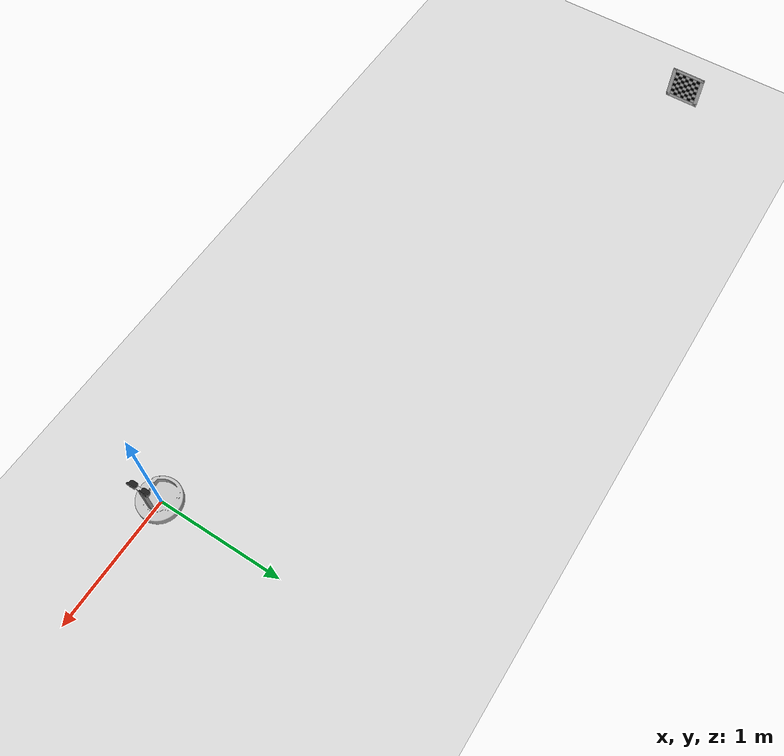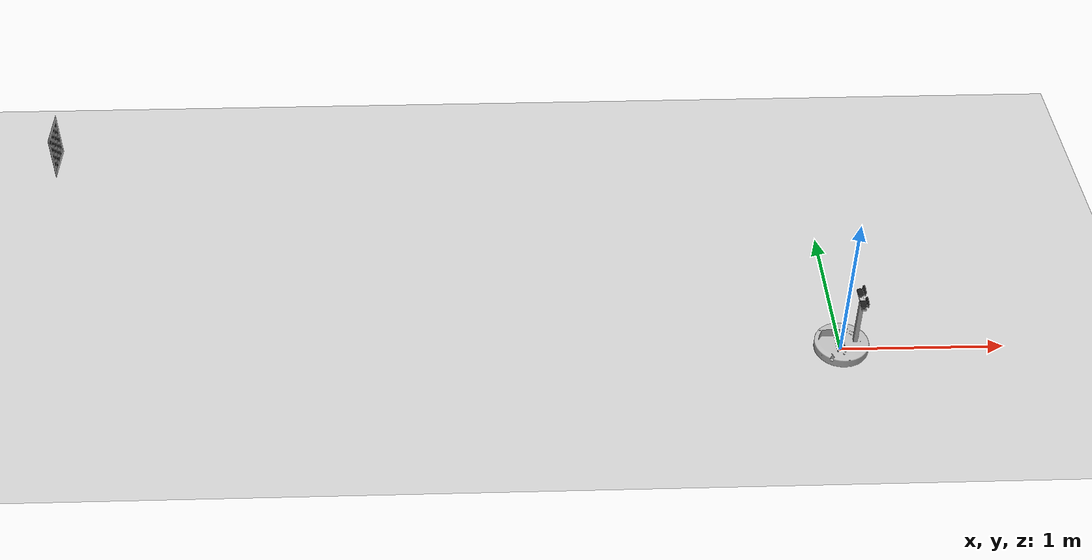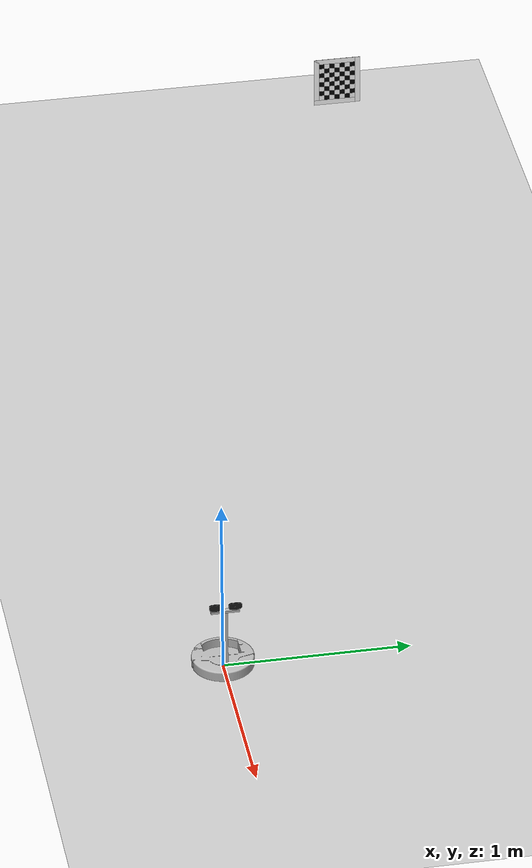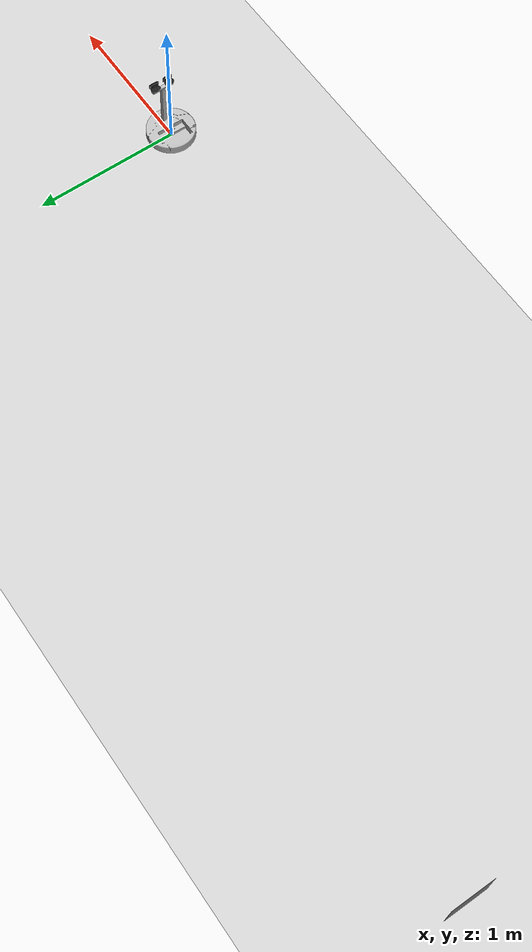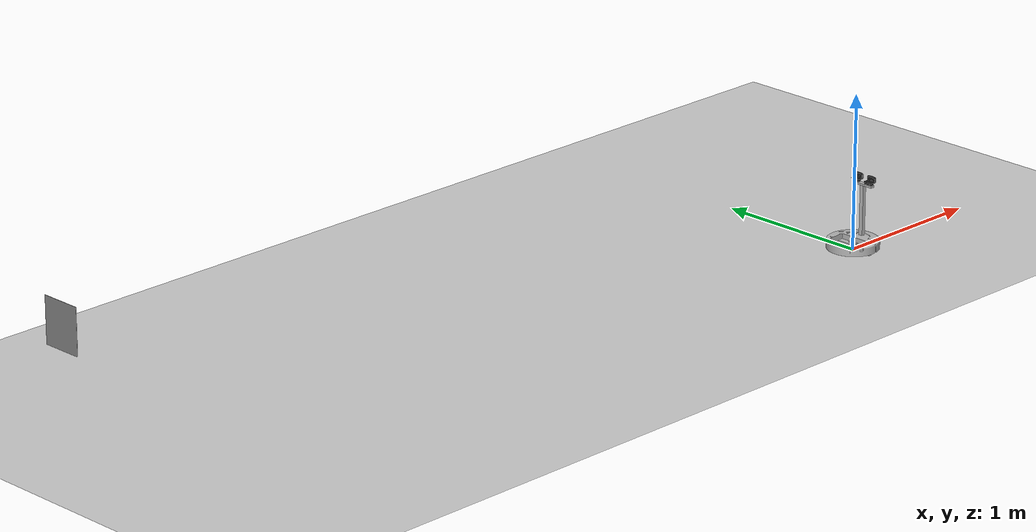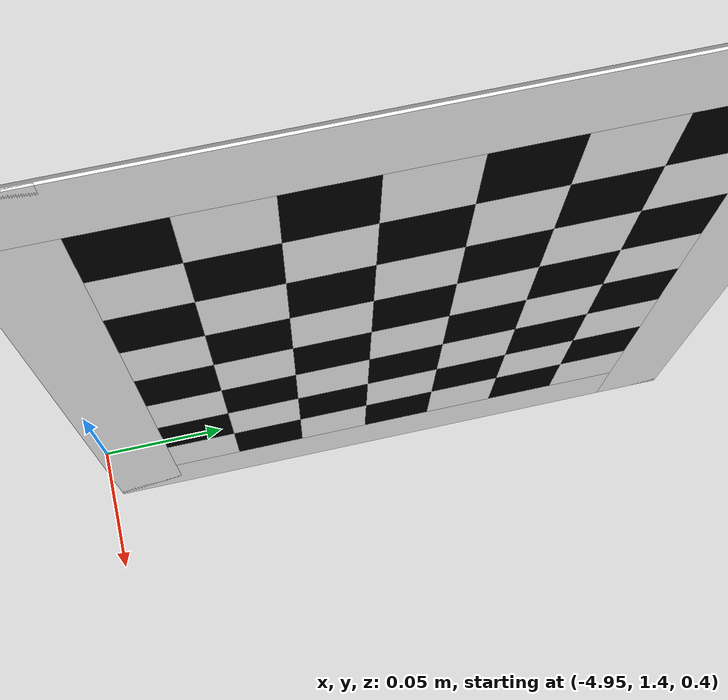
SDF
<sdf version="1.6">
 <world name="default">
  <plugin filename="gz-sim-physics-system" name="gz::sim::systems::Physics"/>
  <plugin filename="gz-sim-user-commands-system" name="gz::sim::systems::UserCommands"/>
  <plugin filename="gz-sim-scene-broadcaster-system" name="gz::sim::systems::SceneBroadcaster"/>
  <plugin filename="gz-sim-contact-system" name="gz::sim::systems::Contact"/>
  <plugin filename="gz-sim-sensors-system" name="gz::sim::systems::Sensors"/>
  <plugin filename="gz-sim-altimeter-system" name="gz::sim::systems::Altimeter"/>
  <plugin filename="gz-sim-magnetometer-system" name="gz::sim::systems::Magnetometer"/>
  <plugin filename="gz-sim-forcetorque-system" name="gz::sim::systems::ForceTorque"/>
  <plugin filename="gz-sim-logical-camera-system" name="gz::sim::systems::LogicalCamera"/>
  <plugin filename="gz-sim-robotraconteur-server-plugin" name="RobotRaconteur::GzSim::ServerPlugin">
   <server-tcp-port>11346</server-tcp-port>
  </plugin>
  <scene><ambient>0.6 0.6 0.6 1.0</ambient><shadows>false</shadows></scene>
  <physics name="default_physics" default="true" type="dart">
   <dart><ode><solver><type>default</type></solver></ode></dart>
   <max_step_size>0.001</max_step_size>
   <real_time_factor>1.0</real_time_factor>
  </physics>
  <light type="directional" name="sun">
   <pose>0 0 10 0 0 0</pose>
   <diffuse>0.8 0.8 0.8 1</diffuse>
   <specular>0.2 0.2 0.2 1</specular>
   <attenuation>
    <range>1000</range>
    <constant>0.9</constant>
    <linear>0.01</linear>
    <quadratic>0.001</quadratic>
   </attenuation>
   <direction>-0.5 0.1 -0.9</direction>
  </light>
  <model name="ground_plane">
   <static>true</static>
   <link name="link">
    <collision name="collision">
     <geometry><plane><normal>0 0 1</normal><size>100 100</size></plane></geometry>
     <surface>
      <friction><ode><mu>0</mu><mu2>0</mu2><fdir1>0 0 0</fdir1><slip1>0</slip1><slip2>0</slip2></ode></friction>
     </surface>
    </collision>
    <visual name="visual">
     <geometry><plane><normal>0 0 1</normal><size>100 100</size></plane></geometry>
     <material>
      <ambient>0.8 0.8 0.8 1</ambient>
      <diffuse>0.8 0.8 0.8 1</diffuse>
      <specular>0.8 0.8 0.8 1</specular>
     </material>
    </visual>
   </link>
  </model>
  <include><uri>model://landmark</uri><pose>-4.95 1.53 0.48 0 -1.57 0</pose></include>
  <include><uri>model://rr_create</uri></include>
  <gravity>0.0 0.0 -9.81</gravity>
 </world>
</sdf>

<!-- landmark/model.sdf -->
<!-- |    This document was autogenerated by xacro from model.sdx.xacro                | -->
<!-- |    EDITING THIS FILE BY HAND IS NOT RECOMMENDED                                 | -->
<sdf version="1.5">
  <model name="landmark">
    <static>true</static>
    <link name="base_link">
      <!-- Back of the landmark not to mess with small Z offset -->
      <visual name="back">
        <pose>0 0 0.0015 0 0 0</pose>
        <geometry>
          <box>
            <size>0.3 0.27 0.001</size>
          </box>
        </geometry>
        <material>
          <ambient>0.5 0.5 0.5 1</ambient>
          <specular>0.5 0.5 0.5 1</specular>
          <diffuse>0.5 0.5 0.5 1</diffuse>
        </material>
      </visual>
      <inertial>
        <mass>0.1</mass>
      </inertial>
      <!-- Borders -->
      <visual name="border0">
        <pose>0.135 0 0.0005 0 0 0</pose>
        <geometry>
          <box>
            <size>0.03 0.27 0.001</size>
          </box>
        </geometry>
        <material>
          <ambient>1 1 1 1</ambient>
          <specular>1 1 1 1</specular>
          <diffuse>1 1 1 1</diffuse>
        </material>
      </visual>
      <visual name="border1">
        <pose>-0.135 0 0.0005 0 0 0</pose>
        <geometry>
          <box>
            <size>0.03 0.27 0.001</size>
          </box>
        </geometry>
        <material>
          <ambient>1 1 1 1</ambient>
          <specular>1 1 1 1</specular>
          <diffuse>1 1 1 1</diffuse>
        </material>
      </visual>
      <visual name="border2">
        <pose>0 0.12 0.0005 0 0 0</pose>
        <geometry>
          <box>
            <size>0.3 0.03 0.001</size>
          </box>
        </geometry>
        <material>
          <ambient>1 1 1 1</ambient>
          <specular>1 1 1 1</specular>
          <diffuse>1 1 1 1</diffuse>
        </material>
      </visual>
      <visual name="border3">
        <pose>0 -0.12 0.0005 0 0 0</pose>
        <geometry>
          <box>
            <size>0.3 0.03 0.001</size>
          </box>
        </geometry>
        <material>
          <ambient>1 1 1 1</ambient>
          <specular>1 1 1 1</specular>
          <diffuse>1 1 1 1</diffuse>
        </material>
      </visual>
      <visual name="76">
        <pose>0.105 0.09 0.0005 0 0 0</pose>
        <geometry>
          <box>
            <size>0.03 0.03 0.001</size>
          </box>
        </geometry>
        <material>
          <ambient>0 0 0 1</ambient>
          <specular>0 0 0 1</specular>
          <diffuse>0 0 0 1</diffuse>
        </material>
      </visual>
      <visual name="75">
        <pose>0.105 0.06 0.0005 0 0 0</pose>
        <geometry>
          <box>
            <size>0.03 0.03 0.001</size>
          </box>
        </geometry>
        <material>
          <ambient>1 1 1 1</ambient>
          <specular>1 1 1 1</specular>
          <diffuse>1 1 1 1</diffuse>
        </material>
      </visual>
      <visual name="74">
        <pose>0.105 0.03 0.0005 0 0 0</pose>
        <geometry>
          <box>
            <size>0.03 0.03 0.001</size>
          </box>
        </geometry>
        <material>
          <ambient>0 0 0 1</ambient>
          <specular>0 0 0 1</specular>
          <diffuse>0 0 0 1</diffuse>
        </material>
      </visual>
      <visual name="73">
        <pose>0.105 0.0 0.0005 0 0 0</pose>
        <geometry>
          <box>
            <size>0.03 0.03 0.001</size>
          </box>
        </geometry>
        <material>
          <ambient>1 1 1 1</ambient>
          <specular>1 1 1 1</specular>
          <diffuse>1 1 1 1</diffuse>
        </material>
      </visual>
      <visual name="72">
        <pose>0.105 -0.03 0.0005 0 0 0</pose>
        <geometry>
          <box>
            <size>0.03 0.03 0.001</size>
          </box>
        </geometry>
        <material>
          <ambient>0 0 0 1</ambient>
          <specular>0 0 0 1</specular>
          <diffuse>0 0 0 1</diffuse>
        </material>
      </visual>
      <visual name="71">
        <pose>0.105 -0.06 0.0005 0 0 0</pose>
        <geometry>
          <box>
            <size>0.03 0.03 0.001</size>
          </box>
        </geometry>
        <material>
          <ambient>1 1 1 1</ambient>
          <specular>1 1 1 1</specular>
          <diffuse>1 1 1 1</diffuse>
        </material>
      </visual>
      <visual name="70">
        <pose>0.105 -0.09 0.0005 0 0 0</pose>
        <geometry>
          <box>
            <size>0.03 0.03 0.001</size>
          </box>
        </geometry>
        <material>
          <ambient>0 0 0 1</ambient>
          <specular>0 0 0 1</specular>
          <diffuse>0 0 0 1</diffuse>
        </material>
      </visual>
      <visual name="66">
        <pose>0.075 0.09 0.0005 0 0 0</pose>
        <geometry>
          <box>
            <size>0.03 0.03 0.001</size>
          </box>
        </geometry>
        <material>
          <ambient>1 1 1 1</ambient>
          <specular>1 1 1 1</specular>
          <diffuse>1 1 1 1</diffuse>
        </material>
      </visual>
      <visual name="65">
        <pose>0.075 0.06 0.0005 0 0 0</pose>
        <geometry>
          <box>
            <size>0.03 0.03 0.001</size>
          </box>
        </geometry>
        <material>
          <ambient>0 0 0 1</ambient>
          <specular>0 0 0 1</specular>
          <diffuse>0 0 0 1</diffuse>
        </material>
      </visual>
      <visual name="64">
        <pose>0.075 0.03 0.0005 0 0 0</pose>
        <geometry>
          <box>
            <size>0.03 0.03 0.001</size>
          </box>
        </geometry>
        <material>
          <ambient>1 1 1 1</ambient>
          <specular>1 1 1 1</specular>
          <diffuse>1 1 1 1</diffuse>
        </material>
      </visual>
      <visual name="63">
        <pose>0.075 0.0 0.0005 0 0 0</pose>
        <geometry>
          <box>
            <size>0.03 0.03 0.001</size>
          </box>
        </geometry>
        <material>
          <ambient>0 0 0 1</ambient>
          <specular>0 0 0 1</specular>
          <diffuse>0 0 0 1</diffuse>
        </material>
      </visual>
      <visual name="62">
        <pose>0.075 -0.03 0.0005 0 0 0</pose>
        <geometry>
          <box>
            <size>0.03 0.03 0.001</size>
          </box>
        </geometry>
        <material>
          <ambient>1 1 1 1</ambient>
          <specular>1 1 1 1</specular>
          <diffuse>1 1 1 1</diffuse>
        </material>
      </visual>
      <visual name="61">
        <pose>0.075 -0.06 0.0005 0 0 0</pose>
        <geometry>
          <box>
            <size>0.03 0.03 0.001</size>
          </box>
        </geometry>
        <material>
          <ambient>0 0 0 1</ambient>
          <specular>0 0 0 1</specular>
          <diffuse>0 0 0 1</diffuse>
        </material>
      </visual>
      <visual name="60">
        <pose>0.075 -0.09 0.0005 0 0 0</pose>
        <geometry>
          <box>
            <size>0.03 0.03 0.001</size>
          </box>
        </geometry>
        <material>
          <ambient>1 1 1 1</ambient>
          <specular>1 1 1 1</specular>
          <diffuse>1 1 1 1</diffuse>
        </material>
      </visual>
      <visual name="56">
        <pose>0.045 0.09 0.0005 0 0 0</pose>
        <geometry>
          <box>
            <size>0.03 0.03 0.001</size>
          </box>
        </geometry>
        <material>
          <ambient>0 0 0 1</ambient>
          <specular>0 0 0 1</specular>
          <diffuse>0 0 0 1</diffuse>
        </material>
      </visual>
      <visual name="55">
        <pose>0.045 0.06 0.0005 0 0 0</pose>
        <geometry>
          <box>
            <size>0.03 0.03 0.001</size>
          </box>
        </geometry>
        <material>
          <ambient>1 1 1 1</ambient>
          <specular>1 1 1 1</specular>
          <diffuse>1 1 1 1</diffuse>
        </material>
      </visual>
      <visual name="54">
        <pose>0.045 0.03 0.0005 0 0 0</pose>
        <geometry>
          <box>
            <size>0.03 0.03 0.001</size>
          </box>
        </geometry>
        <material>
          <ambient>0 0 0 1</ambient>
          <specular>0 0 0 1</specular>
          <diffuse>0 0 0 1</diffuse>
        </material>
      </visual>
      <visual name="53">
        <pose>0.045 0.0 0.0005 0 0 0</pose>
        <geometry>
          <box>
            <size>0.03 0.03 0.001</size>
          </box>
        </geometry>
        <material>
          <ambient>1 1 1 1</ambient>
          <specular>1 1 1 1</specular>
          <diffuse>1 1 1 1</diffuse>
        </material>
      </visual>
      <visual name="52">
        <pose>0.045 -0.03 0.0005 0 0 0</pose>
        <geometry>
          <box>
            <size>0.03 0.03 0.001</size>
          </box>
        </geometry>
        <material>
          <ambient>0 0 0 1</ambient>
          <specular>0 0 0 1</specular>
          <diffuse>0 0 0 1</diffuse>
        </material>
      </visual>
      <visual name="51">
        <pose>0.045 -0.06 0.0005 0 0 0</pose>
        <geometry>
          <box>
            <size>0.03 0.03 0.001</size>
          </box>
        </geometry>
        <material>
          <ambient>1 1 1 1</ambient>
          <specular>1 1 1 1</specular>
          <diffuse>1 1 1 1</diffuse>
        </material>
      </visual>
      <visual name="50">
        <pose>0.045 -0.09 0.0005 0 0 0</pose>
        <geometry>
          <box>
            <size>0.03 0.03 0.001</size>
          </box>
        </geometry>
        <material>
          <ambient>0 0 0 1</ambient>
          <specular>0 0 0 1</specular>
          <diffuse>0 0 0 1</diffuse>
        </material>
      </visual>
      <visual name="46">
        <pose>0.015 0.09 0.0005 0 0 0</pose>
        <geometry>
          <box>
            <size>0.03 0.03 0.001</size>
          </box>
        </geometry>
        <material>
          <ambient>1 1 1 1</ambient>
          <specular>1 1 1 1</specular>
          <diffuse>1 1 1 1</diffuse>
        </material>
      </visual>
      <visual name="45">
        <pose>0.015 0.06 0.0005 0 0 0</pose>
        <geometry>
          <box>
            <size>0.03 0.03 0.001</size>
          </box>
        </geometry>
        <material>
          <ambient>0 0 0 1</ambient>
          <specular>0 0 0 1</specular>
          <diffuse>0 0 0 1</diffuse>
        </material>
      </visual>
      <visual name="44">
        <pose>0.015 0.03 0.0005 0 0 0</pose>
        <geometry>
          <box>
            <size>0.03 0.03 0.001</size>
          </box>
        </geometry>
        <material>
          <ambient>1 1 1 1</ambient>
          <specular>1 1 1 1</specular>
          <diffuse>1 1 1 1</diffuse>
        </material>
      </visual>
      <visual name="43">
        <pose>0.015 0.0 0.0005 0 0 0</pose>
        <geometry>
          <box>
            <size>0.03 0.03 0.001</size>
          </box>
        </geometry>
        <material>
          <ambient>0 0 0 1</ambient>
          <specular>0 0 0 1</specular>
          <diffuse>0 0 0 1</diffuse>
        </material>
      </visual>
      <visual name="42">
        <pose>0.015 -0.03 0.0005 0 0 0</pose>
        <geometry>
          <box>
            <size>0.03 0.03 0.001</size>
          </box>
        </geometry>
        <material>
          <ambient>1 1 1 1</ambient>
          <specular>1 1 1 1</specular>
          <diffuse>1 1 1 1</diffuse>
        </material>
      </visual>
      <visual name="41">
        <pose>0.015 -0.06 0.0005 0 0 0</pose>
        <geometry>
          <box>
            <size>0.03 0.03 0.001</size>
          </box>
        </geometry>
        <material>
          <ambient>0 0 0 1</ambient>
          <specular>0 0 0 1</specular>
          <diffuse>0 0 0 1</diffuse>
        </material>
      </visual>
      <visual name="40">
        <pose>0.015 -0.09 0.0005 0 0 0</pose>
        <geometry>
          <box>
            <size>0.03 0.03 0.001</size>
          </box>
        </geometry>
        <material>
          <ambient>1 1 1 1</ambient>
          <specular>1 1 1 1</specular>
          <diffuse>1 1 1 1</diffuse>
        </material>
      </visual>
      <visual name="36">
        <pose>-0.015 0.09 0.0005 0 0 0</pose>
        <geometry>
          <box>
            <size>0.03 0.03 0.001</size>
          </box>
        </geometry>
        <material>
          <ambient>0 0 0 1</ambient>
          <specular>0 0 0 1</specular>
          <diffuse>0 0 0 1</diffuse>
        </material>
      </visual>
      <visual name="35">
        <pose>-0.015 0.06 0.0005 0 0 0</pose>
        <geometry>
          <box>
            <size>0.03 0.03 0.001</size>
          </box>
        </geometry>
        <material>
          <ambient>1 1 1 1</ambient>
          <specular>1 1 1 1</specular>
          <diffuse>1 1 1 1</diffuse>
        </material>
      </visual>
      <visual name="34">
        <pose>-0.015 0.03 0.0005 0 0 0</pose>
        <geometry>
          <box>
            <size>0.03 0.03 0.001</size>
          </box>
        </geometry>
        <material>
          <ambient>0 0 0 1</ambient>
          <specular>0 0 0 1</specular>
          <diffuse>0 0 0 1</diffuse>
        </material>
      </visual>
      <visual name="33">
        <pose>-0.015 0.0 0.0005 0 0 0</pose>
        <geometry>
          <box>
            <size>0.03 0.03 0.001</size>
          </box>
        </geometry>
        <material>
          <ambient>1 1 1 1</ambient>
          <specular>1 1 1 1</specular>
          <diffuse>1 1 1 1</diffuse>
        </material>
      </visual>
      <visual name="32">
        <pose>-0.015 -0.03 0.0005 0 0 0</pose>
        <geometry>
          <box>
            <size>0.03 0.03 0.001</size>
          </box>
        </geometry>
        <material>
          <ambient>0 0 0 1</ambient>
          <specular>0 0 0 1</specular>
          <diffuse>0 0 0 1</diffuse>
        </material>
      </visual>
      <visual name="31">
        <pose>-0.015 -0.06 0.0005 0 0 0</pose>
        <geometry>
          <box>
            <size>0.03 0.03 0.001</size>
          </box>
        </geometry>
        <material>
          <ambient>1 1 1 1</ambient>
          <specular>1 1 1 1</specular>
          <diffuse>1 1 1 1</diffuse>
        </material>
      </visual>
      <visual name="30">
        <pose>-0.015 -0.09 0.0005 0 0 0</pose>
        <geometry>
          <box>
            <size>0.03 0.03 0.001</size>
          </box>
        </geometry>
        <material>
          <ambient>0 0 0 1</ambient>
          <specular>0 0 0 1</specular>
          <diffuse>0 0 0 1</diffuse>
        </material>
      </visual>
      <visual name="26">
        <pose>-0.045 0.09 0.0005 0 0 0</pose>
        <geometry>
          <box>
            <size>0.03 0.03 0.001</size>
          </box>
        </geometry>
        <material>
          <ambient>1 1 1 1</ambient>
          <specular>1 1 1 1</specular>
          <diffuse>1 1 1 1</diffuse>
        </material>
      </visual>
      <visual name="25">
        <pose>-0.045 0.06 0.0005 0 0 0</pose>
        <geometry>
          <box>
            <size>0.03 0.03 0.001</size>
          </box>
        </geometry>
        <material>
          <ambient>0 0 0 1</ambient>
          <specular>0 0 0 1</specular>
          <diffuse>0 0 0 1</diffuse>
        </material>
      </visual>
      <visual name="24">
        <pose>-0.045 0.03 0.0005 0 0 0</pose>
        <geometry>
          <box>
            <size>0.03 0.03 0.001</size>
          </box>
        </geometry>
        <material>
          <ambient>1 1 1 1</ambient>
          <specular>1 1 1 1</specular>
          <diffuse>1 1 1 1</diffuse>
        </material>
      </visual>
      <visual name="23">
        <pose>-0.045 0.0 0.0005 0 0 0</pose>
        <geometry>
          <box>
            <size>0.03 0.03 0.001</size>
          </box>
        </geometry>
        <material>
          <ambient>0 0 0 1</ambient>
          <specular>0 0 0 1</specular>
          <diffuse>0 0 0 1</diffuse>
        </material>
      </visual>
      <visual name="22">
        <pose>-0.045 -0.03 0.0005 0 0 0</pose>
        <geometry>
          <box>
            <size>0.03 0.03 0.001</size>
          </box>
        </geometry>
        <material>
          <ambient>1 1 1 1</ambient>
          <specular>1 1 1 1</specular>
          <diffuse>1 1 1 1</diffuse>
        </material>
      </visual>
      <visual name="21">
        <pose>-0.045 -0.06 0.0005 0 0 0</pose>
        <geometry>
          <box>
            <size>0.03 0.03 0.001</size>
          </box>
        </geometry>
        <material>
          <ambient>0 0 0 1</ambient>
          <specular>0 0 0 1</specular>
          <diffuse>0 0 0 1</diffuse>
        </material>
      </visual>
      <visual name="20">
        <pose>-0.045 -0.09 0.0005 0 0 0</pose>
        <geometry>
          <box>
            <size>0.03 0.03 0.001</size>
          </box>
        </geometry>
        <material>
          <ambient>1 1 1 1</ambient>
          <specular>1 1 1 1</specular>
          <diffuse>1 1 1 1</diffuse>
        </material>
      </visual>
      <visual name="16">
        <pose>-0.075 0.09 0.0005 0 0 0</pose>
        <geometry>
          <box>
            <size>0.03 0.03 0.001</size>
          </box>
        </geometry>
        <material>
          <ambient>0 0 0 1</ambient>
          <specular>0 0 0 1</specular>
          <diffuse>0 0 0 1</diffuse>
        </material>
      </visual>
      <visual name="15">
        <pose>-0.075 0.06 0.0005 0 0 0</pose>
        <geometry>
          <box>
            <size>0.03 0.03 0.001</size>
          </box>
        </geometry>
        <material>
          <ambient>1 1 1 1</ambient>
          <specular>1 1 1 1</specular>
          <diffuse>1 1 1 1</diffuse>
        </material>
      </visual>
      <visual name="14">
        <pose>-0.075 0.03 0.0005 0 0 0</pose>
        <geometry>
          <box>
            <size>0.03 0.03 0.001</size>
          </box>
        </geometry>
        <material>
          <ambient>0 0 0 1</ambient>
          <specular>0 0 0 1</specular>
          <diffuse>0 0 0 1</diffuse>
        </material>
      </visual>
      <visual name="13">
        <pose>-0.075 0.0 0.0005 0 0 0</pose>
        <geometry>
          <box>
            <size>0.03 0.03 0.001</size>
          </box>
        </geometry>
        <material>
          <ambient>1 1 1 1</ambient>
          <specular>1 1 1 1</specular>
          <diffuse>1 1 1 1</diffuse>
        </material>
      </visual>
      <visual name="12">
        <pose>-0.075 -0.03 0.0005 0 0 0</pose>
        <geometry>
          <box>
            <size>0.03 0.03 0.001</size>
          </box>
        </geometry>
        <material>
          <ambient>0 0 0 1</ambient>
          <specular>0 0 0 1</specular>
          <diffuse>0 0 0 1</diffuse>
        </material>
      </visual>
      <visual name="11">
        <pose>-0.075 -0.06 0.0005 0 0 0</pose>
        <geometry>
          <box>
            <size>0.03 0.03 0.001</size>
          </box>
        </geometry>
        <material>
          <ambient>1 1 1 1</ambient>
          <specular>1 1 1 1</specular>
          <diffuse>1 1 1 1</diffuse>
        </material>
      </visual>
      <visual name="10">
        <pose>-0.075 -0.09 0.0005 0 0 0</pose>
        <geometry>
          <box>
            <size>0.03 0.03 0.001</size>
          </box>
        </geometry>
        <material>
          <ambient>0 0 0 1</ambient>
          <specular>0 0 0 1</specular>
          <diffuse>0 0 0 1</diffuse>
        </material>
      </visual>
      <visual name="06">
        <pose>-0.105 0.09 0.0005 0 0 0</pose>
        <geometry>
          <box>
            <size>0.03 0.03 0.001</size>
          </box>
        </geometry>
        <material>
          <ambient>1 1 1 1</ambient>
          <specular>1 1 1 1</specular>
          <diffuse>1 1 1 1</diffuse>
        </material>
      </visual>
      <visual name="05">
        <pose>-0.105 0.06 0.0005 0 0 0</pose>
        <geometry>
          <box>
            <size>0.03 0.03 0.001</size>
          </box>
        </geometry>
        <material>
          <ambient>0 0 0 1</ambient>
          <specular>0 0 0 1</specular>
          <diffuse>0 0 0 1</diffuse>
        </material>
      </visual>
      <visual name="04">
        <pose>-0.105 0.03 0.0005 0 0 0</pose>
        <geometry>
          <box>
            <size>0.03 0.03 0.001</size>
          </box>
        </geometry>
        <material>
          <ambient>1 1 1 1</ambient>
          <specular>1 1 1 1</specular>
          <diffuse>1 1 1 1</diffuse>
        </material>
      </visual>
      <visual name="03">
        <pose>-0.105 0.0 0.0005 0 0 0</pose>
        <geometry>
          <box>
            <size>0.03 0.03 0.001</size>
          </box>
        </geometry>
        <material>
          <ambient>0 0 0 1</ambient>
          <specular>0 0 0 1</specular>
          <diffuse>0 0 0 1</diffuse>
        </material>
      </visual>
      <visual name="02">
        <pose>-0.105 -0.03 0.0005 0 0 0</pose>
        <geometry>
          <box>
            <size>0.03 0.03 0.001</size>
          </box>
        </geometry>
        <material>
          <ambient>1 1 1 1</ambient>
          <specular>1 1 1 1</specular>
          <diffuse>1 1 1 1</diffuse>
        </material>
      </visual>
      <visual name="01">
        <pose>-0.105 -0.06 0.0005 0 0 0</pose>
        <geometry>
          <box>
            <size>0.03 0.03 0.001</size>
          </box>
        </geometry>
        <material>
          <ambient>0 0 0 1</ambient>
          <specular>0 0 0 1</specular>
          <diffuse>0 0 0 1</diffuse>
        </material>
      </visual>
      <visual name="00">
        <pose>-0.105 -0.09 0.0005 0 0 0</pose>
        <geometry>
          <box>
            <size>0.03 0.03 0.001</size>
          </box>
        </geometry>
        <material>
          <ambient>1 1 1 1</ambient>
          <specular>1 1 1 1</specular>
          <diffuse>1 1 1 1</diffuse>
        </material>
      </visual>
    </link>
  </model>
</sdf>

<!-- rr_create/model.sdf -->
<sdf version="1.5">
  <model name="rr_create">
    <link name="base">
      <inertial>
        <pose>0.001453 -0.000453 0.029787 0 0 0</pose>
        <inertia>
          <ixx>0.058640</ixx>
          <ixy>0.000124</ixy>
          <ixz>0.000615</ixz>
          <iyy>0.058786</iyy>
          <iyz>0.000014</iyz>
          <izz>1.532440</izz>
        </inertia>
        <mass>2.234000</mass>
      </inertial>
      <collision name="base_collision">
        <pose>0 0 0.047800 0 0 0</pose>
        <geometry>
          <cylinder>
            <radius>0.016495</radius>
            <length>0.061163</length>
          </cylinder>
        </geometry>
      </collision>
      <visual name="base_visual">
        <pose>0 0 0.047800 0 0 0</pose>
        <geometry>
          <mesh>
            <uri>model://rr_create/meshes/create_body.dae</uri>
          </mesh>
        </geometry>
      </visual>
      <collision name="front_wheel_collision">
        <pose>0.130000 0 0.017000 0 1.570700 1.570700</pose>
        <geometry>
          <sphere>
            <radius>0.018000</radius>
          </sphere>
        </geometry>
        <surface>
          <friction>
            <ode>
              <mu>0</mu>
              <mu2>0</mu2>
              <fdir1>0 0 0</fdir1>
              <slip1>0</slip1>
              <slip2>0</slip2>
            </ode>
          </friction>
        </surface>
      </collision>
      <visual name="front_wheel_visual">
        <pose>0.130000 0 0.017000 0 1.570700 1.570700</pose>
        <geometry>
          <sphere>
            <radius>0.009000</radius>
          </sphere>
        </geometry>
      </visual>
      <collision name="rear_wheel_collision">
        <pose>-0.13 0 0.017 0 1.5707 1.5707</pose>
        <geometry>
          <sphere>
            <radius>0.015000</radius>
          </sphere>
        </geometry>
        <surface>
          <friction>
            <ode>
              <mu>0</mu>
              <mu2>0</mu2>
              <fdir1>0 0 0</fdir1>
              <slip1>0</slip1>
              <slip2>0</slip2>
            </ode>
          </friction>
        </surface>
      </collision>
      <visual name="rear_wheel_visual">
        <pose>-0.130000 0 0.017000 0 1.570700 1.570700</pose>
        <geometry>
          <sphere>
            <radius>0.007500</radius>
          </sphere>
        </geometry>
      </visual>
      <sensor name="left_cliff_sensor" type="ray">
        <pose>0.070000 0.140000 0.027000 0 1.570790 0</pose>
        <ray>
          <scan>
            <horizontal>
              <samples>1</samples>
              <resolution>1.000000</resolution>
              <min_angle>0</min_angle>
              <max_angle>0</max_angle>
            </horizontal>
          </scan>
          <range>
            <min>0.010000</min>
            <max>0.040000</max>
            <resolution>0.100000</resolution>
          </range>
        </ray>
      </sensor>
      <sensor name="leftfront_cliff_sensor" type="ray">
        <pose>0.150000 0.040000 0.027000 0 1.570790 0</pose>
        <ray>
          <scan>
            <horizontal>
              <samples>1</samples>
              <resolution>1.000000</resolution>
              <min_angle>0</min_angle>
              <max_angle>0</max_angle>
            </horizontal>
          </scan>
          <range>
            <min>0.010000</min>
            <max>0.040000</max>
            <resolution>0.100000</resolution>
          </range>
        </ray>
      </sensor>
      <sensor name="right_cliff_sensor" type="ray">
        <pose>0.070000 -0.140000 0.027000 0 1.570790 0</pose>
        <ray>
          <scan>
            <horizontal>
              <samples>1</samples>
              <resolution>1.000000</resolution>
              <min_angle>0</min_angle>
              <max_angle>0</max_angle>
            </horizontal>
          </scan>
          <range>
            <min>0.010000</min>
            <max>0.040000</max>
            <resolution>0.100000</resolution>
          </range>
        </ray>
      </sensor>
      <sensor name="rightfront_cliff_sensor" type="ray">
        <pose>0.150000 -0.040000 0.027000 0 1.570790 0</pose>
        <ray>
          <scan>
            <horizontal>
              <samples>1</samples>
              <resolution>1.000000</resolution>
              <min_angle>0</min_angle>
              <max_angle>0</max_angle>
            </horizontal>
          </scan>
          <range>
            <min>0.010000</min>
            <max>0.040000</max>
            <resolution>0.100000</resolution>
          </range>
        </ray>
      </sensor>
      <sensor name="wall_sensor" type="ray">
        <pose>0.090000 -0.120000 0.059000 0 0 -1.000000</pose>
        <ray>
          <scan>
            <horizontal>
              <samples>1</samples>
              <resolution>1.000000</resolution>
              <min_angle>0</min_angle>
              <max_angle>0</max_angle>
            </horizontal>
          </scan>
          <range>
            <min>0.016000</min>
            <max>0.040000</max>
            <resolution>0.100000</resolution>
          </range>
        </ray>
      </sensor>
      <visual name="mast_pier">
        <pose>0.08 0 0.21 0 0 0</pose>
        <geometry>
          <box><size>0.0254 0.0254 0.38</size></box>
        </geometry>
      </visual>
      <visual name="mast_crossbar">
        <pose>0.08 0 0.40635 0 0 0</pose>
        <geometry>
          <box><size>0.0254 0.1524 0.0127</size></box>
        </geometry>
      </visual>
      <visual name="left_camera">
        <pose>0.0772 0.0508 0.4314 1.570790 0 1.570790</pose>
        <geometry>
        <mesh>
          <uri>model://rr_create/meshes/logitech_camera.dae</uri>
        </mesh>
        </geometry>
        <material>
          <ambient>0.1 0.1 0.1 1</ambient>
          <diffuse>0.1 0.1 0.1 1</diffuse>
          <specular>0 0 0 0</specular>
          <emissive>0 0 0 1</emissive>
        </material>
      </visual>
      <visual name="right_camera">
        <pose>0.0772 -0.0508 0.4314 1.570790 0 1.570790</pose>
        <geometry>
        <mesh>
          <uri>model://rr_create/meshes/logitech_camera.dae</uri>
        </mesh>
        </geometry>
        <material>
          <ambient>0.1 0.1 0.1 1</ambient>
          <diffuse>0.1 0.1 0.1 1</diffuse>
          <specular>0 0 0 0</specular>
          <emissive>0 0 0 1</emissive>
        </material>
      </visual>

      <sensor name="left_camera" type="camera">

        <pose>0.0772 0.0508 0.4435 0 0 0</pose>
        <camera>

          <image>
            <width>1280</width>
            <height>720</height>
            <format>B8G8R8</format>
          </image>
          <lens>
            <intrinsics>
              <fx>616.23</fx>
              <fy>617.23</fy>
              <cx>641.29</cx>
              <cy>359.53</cy>
            </intrinsics>
          </lens>
          <clip>
            <near>0.1</near>
            <far>100</far>
          </clip>
        </camera>
        <always_on>1</always_on>
        <update_rate>30</update_rate>
        <visualize>false</visualize>
      </sensor>

      <sensor name="right_camera" type="camera">

        <pose>0.0772 -0.0508 0.4435 0 0 0</pose>
        <camera>

          <image>
            <width>1280</width>
            <height>720</height>
            <format>B8G8R8</format>
          </image>
          <lens>
            <intrinsics>
              <fx>616.23</fx>
              <fy>617.23</fy>
              <cx>641.29</cx>
              <cy>359.53</cy>
            </intrinsics>
          </lens>
          <clip>
            <near>0.1</near>
            <far>100</far>
          </clip>
        </camera>
        <always_on>1</always_on>
        <update_rate>30</update_rate>
        <visualize>false</visualize>
      </sensor>

    </link>
    <link name="left_wheel">
      <pose>0 0.130000 0.032000 0 0 0</pose>
      <inertial>
        <inertia>
          <ixx>0.001000</ixx>
          <ixy>0</ixy>
          <ixz>0</ixz>
          <iyy>0.001000</iyy>
          <iyz>0</iyz>
          <izz>0.001000</izz>
        </inertia>
        <mass>0.010000</mass>
      </inertial>
      <collision name="collision">
        <pose>0 0 0 0 1.570700 1.570700</pose>
        <geometry>
          <cylinder>
            <radius>0.033000</radius>
            <length>0.023000</length>
          </cylinder>
        </geometry>
        <surface>
          <friction>
            <ode>
              <mu>10</mu>
              <mu2>10</mu2>
              <fdir1>0 0 0</fdir1>
              <slip1>0</slip1>
              <slip2>0</slip2>
            </ode>
          </friction>
        </surface>
      </collision>
      <visual name="visual">
        <pose>0 0 0 0 1.570700 1.570700</pose>
        <geometry>
          <cylinder>
            <radius>0.033000</radius>
            <length>0.023000</length>
          </cylinder>
        </geometry>
      </visual>
    </link>
    <link name="right_wheel">
      <pose>0 -0.130000 0.032000 0 0 0</pose>
      <inertial>
        <inertia>
          <ixx>0.001000</ixx>
          <ixy>0</ixy>
          <ixz>0</ixz>
          <iyy>0.001000</iyy>
          <iyz>0</iyz>
          <izz>0.001000</izz>
        </inertia>
        <mass>0.010000</mass>
      </inertial>
      <collision name="collision">
        <pose>0 0 0 0 1.570700 1.570700</pose>
        <geometry>
          <cylinder>
            <radius>0.033000</radius>
            <length>0.023000</length>
          </cylinder>
        </geometry>
        <surface>
          <friction>
            <ode>
              <mu>10</mu>
              <mu2>10</mu2>
              <fdir1>0 0 0</fdir1>
              <slip1>0</slip1>
              <slip2>0</slip2>
            </ode>
          </friction>
        </surface>
      </collision>
      <visual name="visual">
        <pose>0 0 0 0 1.570700 1.570700</pose>
        <geometry>
          <cylinder>
            <radius>0.033000</radius>
            <length>0.023000</length>
          </cylinder>
        </geometry>
      </visual>
    </link>
    <joint name="left_wheel" type="revolute">
      <parent>base</parent>
      <child>left_wheel</child>
      <axis>
        <xyz>0 1 0</xyz>
        <use_parent_model_frame>true</use_parent_model_frame>
      </axis>
    </joint>
    <joint name="right_wheel" type="revolute">
      <parent>base</parent>
      <child>right_wheel</child>
      <axis>
        <xyz>0 1 0</xyz>
        <use_parent_model_frame>true</use_parent_model_frame>
      </axis>
    </joint>
  </model>
</sdf>
